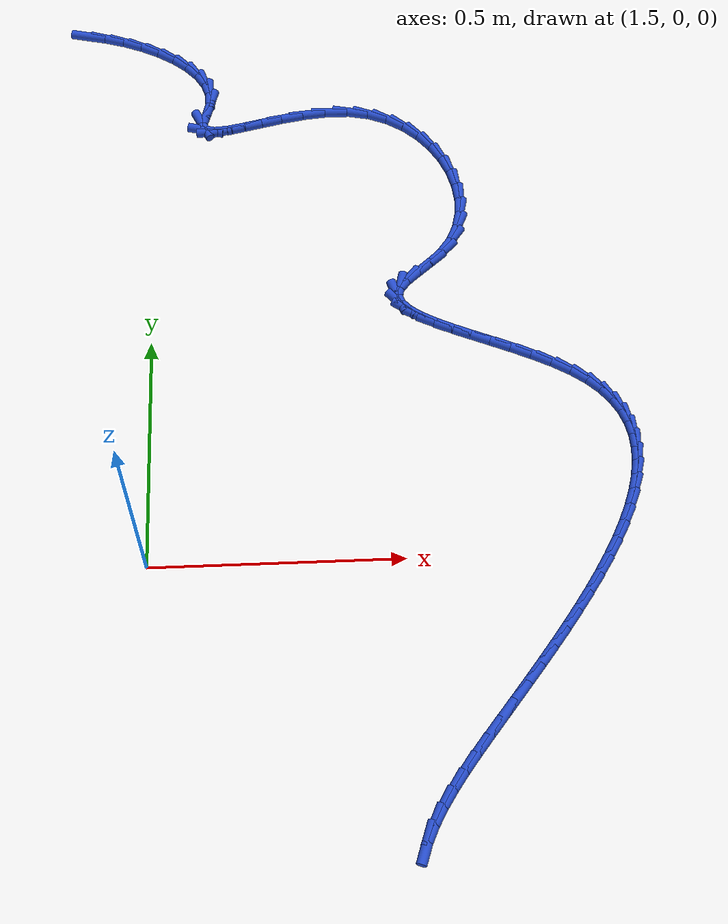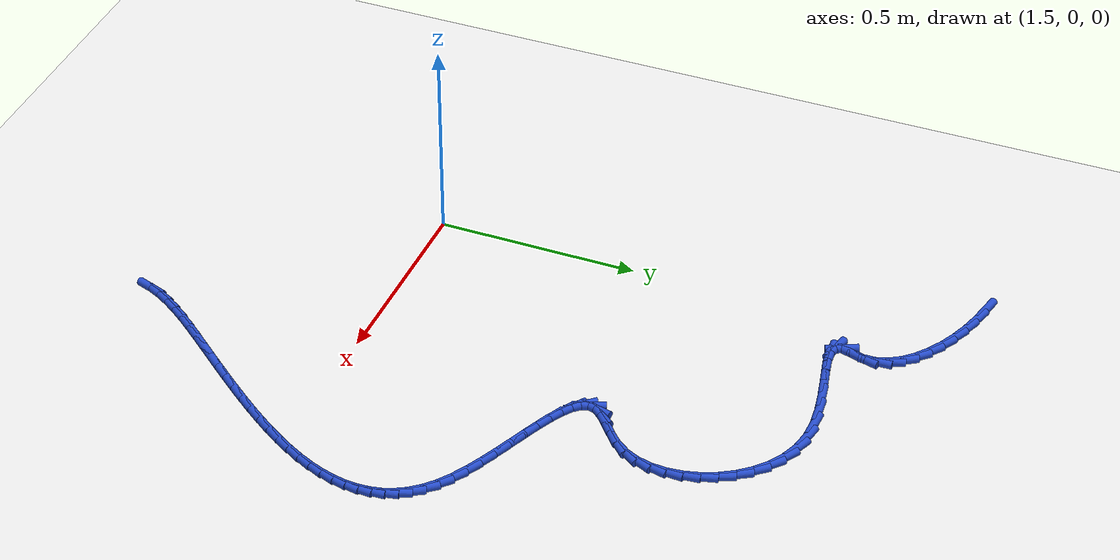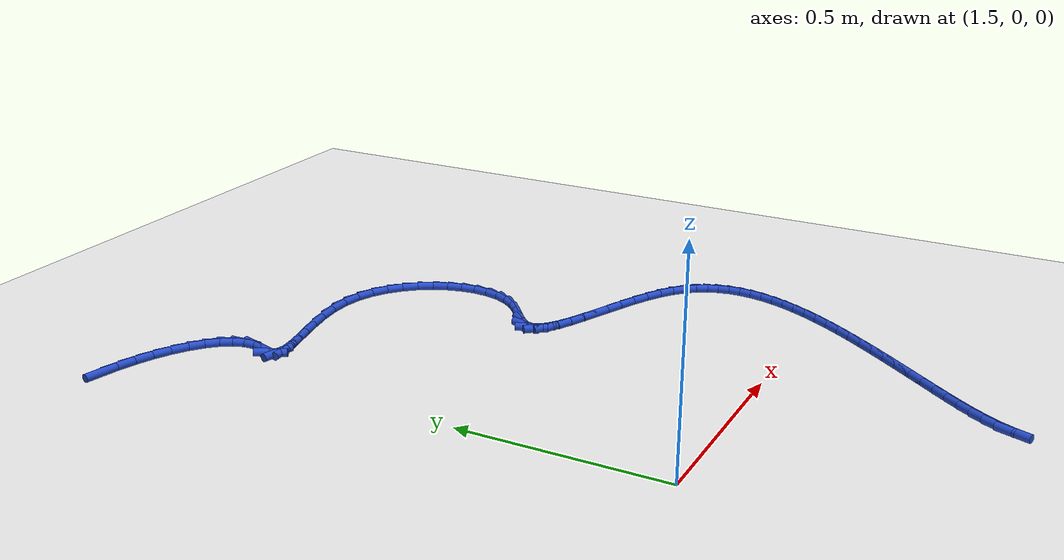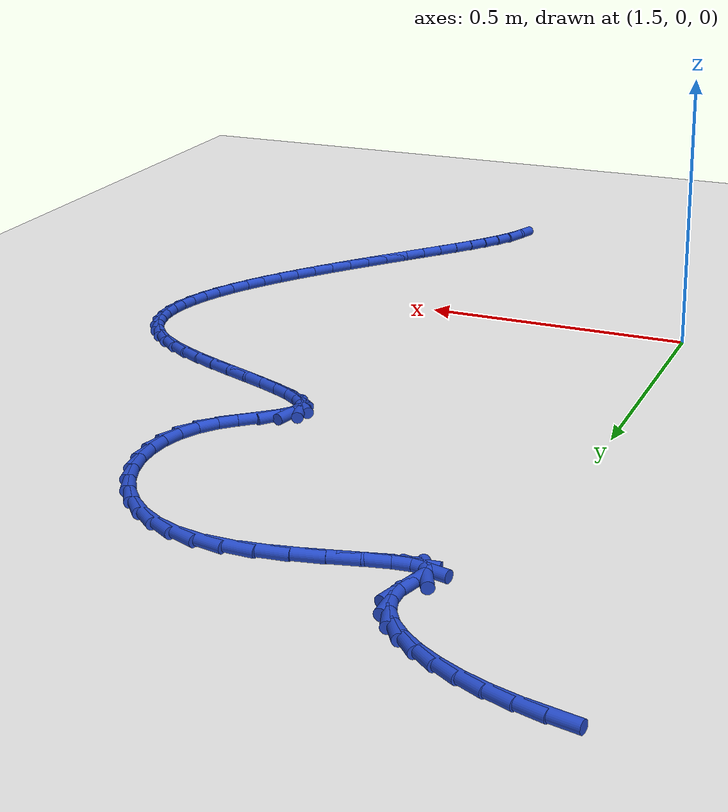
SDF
<sdf version="1.6">
 <world name="default">
  <model name="ground_plane">
   <static>1</static>
   <link name="link">
    <collision name="collision">
     <geometry><plane><normal>0 0 1</normal><size>100 100</size></plane></geometry>
     <surface><friction><ode><mu>100</mu><mu2>50</mu2></ode></friction></surface>
    </collision>
    <visual name="visual">
     <cast_shadows>0</cast_shadows>
     <geometry><plane><normal>0 0 1</normal><size>100 100</size></plane></geometry>
     <material>
      <script><uri>file://media/materials/scripts/gazebo.material</uri><name>Gazebo/WhiteGlow</name></script>
     </material>
    </visual>
   </link>
  </model>
  <model name="line">
   <link name="link_61">
    <pose>1.340395760797428 1.3300878134728509 0.01 0 1.57 -0.2167639707922253</pose>
    <collision name="collision">
     <geometry><cylinder><radius>0.01</radius><length>0.08</length></cylinder></geometry>
    </collision>
    <visual name="visual">
     <material>
      <script><name>Gazebo/Blue</name><uri>file://media/materials/scripts/gazebo.material</uri></script>
     </material>
     <geometry><cylinder><radius>0.01</radius><length>0.08</length></cylinder></geometry>
    </visual>
   </link>
   <link name="link_62">
    <pose>1.3844405349383193 1.3203880963495367 0.01 0 1.57 -0.2935425489364609</pose>
    <collision name="collision">
     <geometry><cylinder><radius>0.01</radius><length>0.08</length></cylinder></geometry>
    </collision>
    <visual name="visual">
     <material>
      <script><name>Gazebo/Blue</name><uri>file://media/materials/scripts/gazebo.material</uri></script>
     </material>
     <geometry><cylinder><radius>0.01</radius><length>0.08</length></cylinder></geometry>
    </visual>
   </link>
   <link name="link_63">
    <pose>1.4274301290411797 1.3073934211287537 0.01 0 1.57 -0.3726568076662822</pose>
    <collision name="collision">
     <geometry><cylinder><radius>0.01</radius><length>0.08</length></cylinder></geometry>
    </collision>
    <visual name="visual">
     <material>
      <script><name>Gazebo/Blue</name><uri>file://media/materials/scripts/gazebo.material</uri></script>
     </material>
     <geometry><cylinder><radius>0.01</radius><length>0.08</length></cylinder></geometry>
    </visual>
   </link>
   <link name="link_64">
    <pose>1.4684306083479337 1.2913653983905737 0.01 0 1.57 -0.4586146114452032</pose>
    <collision name="collision">
     <geometry><cylinder><radius>0.01</radius><length>0.08</length></cylinder></geometry>
    </collision>
    <visual name="visual">
     <material>
      <script><name>Gazebo/Blue</name><uri>file://media/materials/scripts/gazebo.material</uri></script>
     </material>
     <geometry><cylinder><radius>0.01</radius><length>0.08</length></cylinder></geometry>
    </visual>
   </link>
   <link name="link_65">
    <pose>1.5065080381005085 1.2725656387150677 0.01 0 1.57 -0.5569608270661742</pose>
    <collision name="collision">
     <geometry><cylinder><radius>0.01</radius><length>0.08</length></cylinder></geometry>
    </collision>
    <visual name="visual">
     <material>
      <script><name>Gazebo/Blue</name><uri>file://media/materials/scripts/gazebo.material</uri></script>
     </material>
     <geometry><cylinder><radius>0.01</radius><length>0.08</length></cylinder></geometry>
    </visual>
   </link>
   <link name="link_66">
    <pose>1.5407284835408315 1.251255752682307 0.01 0 1.57 -0.6750471116993496</pose>
    <collision name="collision">
     <geometry><cylinder><radius>0.01</radius><length>0.08</length></cylinder></geometry>
    </collision>
    <visual name="visual">
     <material>
      <script><name>Gazebo/Blue</name><uri>file://media/materials/scripts/gazebo.material</uri></script>
     </material>
     <geometry><cylinder><radius>0.01</radius><length>0.08</length></cylinder></geometry>
    </visual>
   </link>
   <link name="link_67">
    <pose>1.5701580099108257 1.2276973508723619 0.01 0 1.57 -0.8227540815636786</pose>
    <collision name="collision">
     <geometry><cylinder><radius>0.01</radius><length>0.08</length></cylinder></geometry>
    </collision>
    <visual name="visual">
     <material>
      <script><name>Gazebo/Blue</name><uri>file://media/materials/scripts/gazebo.material</uri></script>
     </material>
     <geometry><cylinder><radius>0.01</radius><length>0.08</length></cylinder></geometry>
    </visual>
   </link>
   <link name="link_68">
    <pose>1.59386268245242 1.2021520438653048 0.01 0 1.57 -1.0121506575034567</pose>
    <collision name="collision">
     <geometry><cylinder><radius>0.01</radius><length>0.08</length></cylinder></geometry>
    </collision>
    <visual name="visual">
     <material>
      <script><name>Gazebo/Blue</name><uri>file://media/materials/scripts/gazebo.material</uri></script>
     </material>
     <geometry><cylinder><radius>0.01</radius><length>0.08</length></cylinder></geometry>
    </visual>
   </link>
   <link name="link_69">
    <pose>1.6109085664075393 1.1748814422412064 0.01 0 1.57 -1.252963998566608</pose>
    <collision name="collision">
     <geometry><cylinder><radius>0.01</radius><length>0.08</length></cylinder></geometry>
    </collision>
    <visual name="visual">
     <material>
      <script><name>Gazebo/Blue</name><uri>file://media/materials/scripts/gazebo.material</uri></script>
     </material>
     <geometry><cylinder><radius>0.01</radius><length>0.08</length></cylinder></geometry>
    </visual>
   </link>
   <link name="link_70">
    <pose>1.62036172701811 1.1461471565801375 0.01 0 1.57 -1.5398571314530696</pose>
    <collision name="collision">
     <geometry><cylinder><radius>0.01</radius><length>0.08</length></cylinder></geometry>
    </collision>
    <visual name="visual">
     <material>
      <script><name>Gazebo/Blue</name><uri>file://media/materials/scripts/gazebo.material</uri></script>
     </material>
     <geometry><cylinder><radius>0.01</radius><length>0.08</length></cylinder></geometry>
    </visual>
   </link>
   <link name="link_71">
    <pose>1.6212882295260593 1.1162107974621702 0.01 0 1.57 1.3012800765456212</pose>
    <collision name="collision">
     <geometry><cylinder><radius>0.01</radius><length>0.08</length></cylinder></geometry>
    </collision>
    <visual name="visual">
     <material>
      <script><name>Gazebo/Blue</name><uri>file://media/materials/scripts/gazebo.material</uri></script>
     </material>
     <geometry><cylinder><radius>0.01</radius><length>0.08</length></cylinder></geometry>
    </visual>
   </link>
   <link name="link_72">
    <pose>1.6127597035332948 1.0853368973259405 0.01 0 1.57 1.2847132469629963</pose>
    <collision name="collision">
     <geometry><cylinder><radius>0.01</radius><length>0.08</length></cylinder></geometry>
    </collision>
    <visual name="visual">
     <material>
      <script><name>Gazebo/Blue</name><uri>file://media/materials/scripts/gazebo.material</uri></script>
     </material>
     <geometry><cylinder><radius>0.01</radius><length>0.08</length></cylinder></geometry>
    </visual>
   </link>
   <link name="link_73">
    <pose>1.6051887236959914 1.0595985740715066 0.01 0 1.57 -1.1298136319366794</pose>
    <collision name="collision">
     <geometry><cylinder><radius>0.01</radius><length>0.08</length></cylinder></geometry>
    </collision>
    <visual name="visual">
     <material>
      <script><name>Gazebo/Blue</name><uri>file://media/materials/scripts/gazebo.material</uri></script>
     </material>
     <geometry><cylinder><radius>0.01</radius><length>0.08</length></cylinder></geometry>
    </visual>
   </link>
   <link name="link_74">
    <pose>1.6118845076073545 1.0454120374844895 0.01 0 1.57 -0.24508033800442752</pose>
    <collision name="collision">
     <geometry><cylinder><radius>0.01</radius><length>0.08</length></cylinder></geometry>
    </collision>
    <visual name="visual">
     <material>
      <script><name>Gazebo/Blue</name><uri>file://media/materials/scripts/gazebo.material</uri></script>
     </material>
     <geometry><cylinder><radius>0.01</radius><length>0.08</length></cylinder></geometry>
    </visual>
   </link>
   <link name="link_75">
    <pose>1.6309530758306756 1.0406428354073034 0.01 0 1.57 0.08215740917575087</pose>
    <collision name="collision">
     <geometry><cylinder><radius>0.01</radius><length>0.08</length></cylinder></geometry>
    </collision>
    <visual name="visual">
     <material>
      <script><name>Gazebo/Blue</name><uri>file://media/materials/scripts/gazebo.material</uri></script>
     </material>
     <geometry><cylinder><radius>0.01</radius><length>0.08</length></cylinder></geometry>
    </visual>
   </link>
   <link name="link_76">
    <pose>1.66032647646584 1.0430615222688966 0.01 0 1.57 0.19368767412136453</pose>
    <collision name="collision">
     <geometry><cylinder><radius>0.01</radius><length>0.08</length></cylinder></geometry>
    </collision>
    <visual name="visual">
     <material>
      <script><name>Gazebo/Blue</name><uri>file://media/materials/scripts/gazebo.material</uri></script>
     </material>
     <geometry><cylinder><radius>0.01</radius><length>0.08</length></cylinder></geometry>
    </visual>
   </link>
   <link name="link_77">
    <pose>1.6979367576127318 1.0504386524982177 0.01 0 1.57 0.2268689709913293</pose>
    <collision name="collision">
     <geometry><cylinder><radius>0.01</radius><length>0.08</length></cylinder></geometry>
    </collision>
    <visual name="visual">
     <material>
      <script><name>Gazebo/Blue</name><uri>file://media/materials/scripts/gazebo.material</uri></script>
     </material>
     <geometry><cylinder><radius>0.01</radius><length>0.08</length></cylinder></geometry>
    </visual>
   </link>
   <link name="link_78">
    <pose>1.7417159673712368 1.0605447805242152 0.01 0 1.57 0.21798496438910486</pose>
    <collision name="collision">
     <geometry><cylinder><radius>0.01</radius><length>0.08</length></cylinder></geometry>
    </collision>
    <visual name="visual">
     <material>
      <script><name>Gazebo/Blue</name><uri>file://media/materials/scripts/gazebo.material</uri></script>
     </material>
     <geometry><cylinder><radius>0.01</radius><length>0.08</length></cylinder></geometry>
    </visual>
   </link>
   <link name="link_79">
    <pose>1.7895961538412375 1.0711504607758373 0.01 0 1.57 0.17598482008865685</pose>
    <collision name="collision">
     <geometry><cylinder><radius>0.01</radius><length>0.08</length></cylinder></geometry>
    </collision>
    <visual name="visual">
     <material>
      <script><name>Gazebo/Blue</name><uri>file://media/materials/scripts/gazebo.material</uri></script>
     </material>
     <geometry><cylinder><radius>0.01</radius><length>0.08</length></cylinder></geometry>
    </visual>
   </link>
   <link name="link_80">
    <pose>1.8395093651226193 1.0800262476820326 0.01 0 1.57 0.09825152955305204</pose>
    <collision name="collision">
     <geometry><cylinder><radius>0.01</radius><length>0.08</length></cylinder></geometry>
    </collision>
    <visual name="visual">
     <material>
      <script><name>Gazebo/Blue</name><uri>file://media/materials/scripts/gazebo.material</uri></script>
     </material>
     <geometry><cylinder><radius>0.01</radius><length>0.08</length></cylinder></geometry>
    </visual>
   </link>
   <link name="link_81">
    <pose>1.8893876493152668 1.0849426956717494 0.01 0 1.57 -0.026580276292437813</pose>
    <collision name="collision">
     <geometry><cylinder><radius>0.01</radius><length>0.08</length></cylinder></geometry>
    </collision>
    <visual name="visual">
     <material>
      <script><name>Gazebo/Blue</name><uri>file://media/materials/scripts/gazebo.material</uri></script>
     </material>
     <geometry><cylinder><radius>0.01</radius><length>0.08</length></cylinder></geometry>
    </visual>
   </link>
   <link name="link_82">
    <pose>1.9371642668402376 1.0836724808232354 0.01 0 1.57 -0.1985622148275031</pose>
    <collision name="collision">
     <geometry><cylinder><radius>0.01</radius><length>0.08</length></cylinder></geometry>
    </collision>
    <visual name="visual">
     <material>
      <script><name>Gazebo/Blue</name><uri>file://media/materials/scripts/gazebo.material</uri></script>
     </material>
     <geometry><cylinder><radius>0.01</radius><length>0.08</length></cylinder></geometry>
    </visual>
   </link>
   <link name="link_83">
    <pose>1.9812386508959894 1.0748041151236758 0.01 0 1.57 -0.3774107136295934</pose>
    <collision name="collision">
     <geometry><cylinder><radius>0.01</radius><length>0.08</length></cylinder></geometry>
    </collision>
    <visual name="visual">
     <material>
      <script><name>Gazebo/Blue</name><uri>file://media/materials/scripts/gazebo.material</uri></script>
     </material>
     <geometry><cylinder><radius>0.01</radius><length>0.08</length></cylinder></geometry>
    </visual>
   </link>
   <link name="link_84">
    <pose>2.0211788551876664 1.0589712805476412 0.01 0 1.57 -0.5510174598585761</pose>
    <collision name="collision">
     <geometry><cylinder><radius>0.01</radius><length>0.08</length></cylinder></geometry>
    </collision>
    <visual name="visual">
     <material>
      <script><name>Gazebo/Blue</name><uri>file://media/materials/scripts/gazebo.material</uri></script>
     </material>
     <geometry><cylinder><radius>0.01</radius><length>0.08</length></cylinder></geometry>
    </visual>
   </link>
   <link name="link_85">
    <pose>2.05673310842849 1.0371229783002724 0.01 0 1.57 -0.7163111229875072</pose>
    <collision name="collision">
     <geometry><cylinder><radius>0.01</radius><length>0.08</length></cylinder></geometry>
    </collision>
    <visual name="visual">
     <material>
      <script><name>Gazebo/Blue</name><uri>file://media/materials/scripts/gazebo.material</uri></script>
     </material>
     <geometry><cylinder><radius>0.01</radius><length>0.08</length></cylinder></geometry>
    </visual>
   </link>
   <link name="link_86">
    <pose>2.08764963933168 1.0102082095867109 0.01 0 1.57 -0.8728934600782305</pose>
    <collision name="collision">
     <geometry><cylinder><radius>0.01</radius><length>0.08</length></cylinder></geometry>
    </collision>
    <visual name="visual">
     <material>
      <script><name>Gazebo/Blue</name><uri>file://media/materials/scripts/gazebo.material</uri></script>
     </material>
     <geometry><cylinder><radius>0.01</radius><length>0.08</length></cylinder></geometry>
    </visual>
   </link>
   <link name="link_87">
    <pose>2.113676676610458 0.9791759756120975 0.01 0 1.57 -1.0225589534678956</pose>
    <collision name="collision">
     <geometry><cylinder><radius>0.01</radius><length>0.08</length></cylinder></geometry>
    </collision>
    <visual name="visual">
     <material>
      <script><name>Gazebo/Blue</name><uri>file://media/materials/scripts/gazebo.material</uri></script>
     </material>
     <geometry><cylinder><radius>0.01</radius><length>0.08</length></cylinder></geometry>
    </visual>
   </link>
   <link name="link_88">
    <pose>2.134562448978045 0.9449752775815725 0.01 0 1.57 -1.1685962308024194</pose>
    <collision name="collision">
     <geometry><cylinder><radius>0.01</radius><length>0.08</length></cylinder></geometry>
    </collision>
    <visual name="visual">
     <material>
      <script><name>Gazebo/Blue</name><uri>file://media/materials/scripts/gazebo.material</uri></script>
     </material>
     <geometry><cylinder><radius>0.01</radius><length>0.08</length></cylinder></geometry>
    </visual>
   </link>
   <link name="link_89">
    <pose>2.1500551851476613 0.9085551167002771 0.01 0 1.57 -1.3152266408617188</pose>
    <collision name="collision">
     <geometry><cylinder><radius>0.01</radius><length>0.08</length></cylinder></geometry>
    </collision>
    <visual name="visual">
     <material>
      <script><name>Gazebo/Blue</name><uri>file://media/materials/scripts/gazebo.material</uri></script>
     </material>
     <geometry><cylinder><radius>0.01</radius><length>0.08</length></cylinder></geometry>
    </visual>
   </link>
   <link name="link_90">
    <pose>2.159903113832528 0.8708644941733527 0.01 0 1.57 -1.467218491088479</pose>
    <collision name="collision">
     <geometry><cylinder><radius>0.01</radius><length>0.08</length></cylinder></geometry>
    </collision>
    <visual name="visual">
     <material>
      <script><name>Gazebo/Blue</name><uri>file://media/materials/scripts/gazebo.material</uri></script>
     </material>
     <geometry><cylinder><radius>0.01</radius><length>0.08</length></cylinder></geometry>
    </visual>
   </link>
   <link name="link_91">
    <pose>2.1638544637458663 0.8328524112059398 0.01 0 1.57 1.512096232213677</pose>
    <collision name="collision">
     <geometry><cylinder><radius>0.01</radius><length>0.08</length></cylinder></geometry>
    </collision>
    <visual name="visual">
     <material>
      <script><name>Gazebo/Blue</name><uri>file://media/materials/scripts/gazebo.material</uri></script>
     </material>
     <geometry><cylinder><radius>0.01</radius><length>0.08</length></cylinder></geometry>
    </visual>
   </link>
   <link name="link_92">
    <pose>2.1616574636008976 0.7954678690031797 0.01 0 1.57 1.335166811522999</pose>
    <collision name="collision">
     <geometry><cylinder><radius>0.01</radius><length>0.08</length></cylinder></geometry>
    </collision>
    <visual name="visual">
     <material>
      <script><name>Gazebo/Blue</name><uri>file://media/materials/scripts/gazebo.material</uri></script>
     </material>
     <geometry><cylinder><radius>0.01</radius><length>0.08</length></cylinder></geometry>
    </visual>
   </link>
   <link name="link_93">
    <pose>2.1530603421108414 0.7596598687702123 0.01 0 1.57 1.141169263694773</pose>
    <collision name="collision">
     <geometry><cylinder><radius>0.01</radius><length>0.08</length></cylinder></geometry>
    </collision>
    <visual name="visual">
     <material>
      <script><name>Gazebo/Blue</name><uri>file://media/materials/scripts/gazebo.material</uri></script>
     </material>
     <geometry><cylinder><radius>0.01</radius><length>0.08</length></cylinder></geometry>
    </visual>
   </link>
   <link name="link_94">
    <pose>2.1378113279889193 0.7263774117121794 0.01 0 1.57 0.9333698924398326</pose>
    <collision name="collision">
     <geometry><cylinder><radius>0.01</radius><length>0.08</length></cylinder></geometry>
    </collision>
    <visual name="visual">
     <material>
      <script><name>Gazebo/Blue</name><uri>file://media/materials/scripts/gazebo.material</uri></script>
     </material>
     <geometry><cylinder><radius>0.01</radius><length>0.08</length></cylinder></geometry>
    </visual>
   </link>
   <link name="link_95">
    <pose>2.1157208938651624 0.6965476949720115 0.01 0 1.57 0.7681483694709871</pose>
    <collision name="collision">
     <geometry><cylinder><radius>0.01</radius><length>0.08</length></cylinder></geometry>
    </collision>
    <visual name="visual">
     <material>
      <script><name>Gazebo/Blue</name><uri>file://media/materials/scripts/gazebo.material</uri></script>
     </material>
     <geometry><cylinder><radius>0.01</radius><length>0.08</length></cylinder></geometry>
    </visual>
   </link>
   <link name="link_96">
    <pose>2.088638332385625 0.6703837164464365 0.01 0 1.57 0.6946073784588823</pose>
    <collision name="collision">
     <geometry><cylinder><radius>0.01</radius><length>0.08</length></cylinder></geometry>
    </collision>
    <visual name="visual">
     <material>
      <script><name>Gazebo/Blue</name><uri>file://media/materials/scripts/gazebo.material</uri></script>
     </material>
     <geometry><cylinder><radius>0.01</radius><length>0.08</length></cylinder></geometry>
    </visual>
   </link>
   <link name="link_97">
    <pose>2.0608600001776236 0.6472412668059051 0.01 0 1.57 0.7137872941404795</pose>
    <collision name="collision">
     <geometry><cylinder><radius>0.01</radius><length>0.08</length></cylinder></geometry>
    </collision>
    <visual name="visual">
     <material>
      <script><name>Gazebo/Blue</name><uri>file://media/materials/scripts/gazebo.material</uri></script>
     </material>
     <geometry><cylinder><radius>0.01</radius><length>0.08</length></cylinder></geometry>
    </visual>
   </link>
   <link name="link_98">
    <pose>2.0368270001657547 0.6264254320507154 0.01 0 1.57 0.8803544443214262</pose>
    <collision name="collision">
     <geometry><cylinder><radius>0.01</radius><length>0.08</length></cylinder></geometry>
    </collision>
    <visual name="visual">
     <material>
      <script><name>Gazebo/Blue</name><uri>file://media/materials/scripts/gazebo.material</uri></script>
     </material>
     <geometry><cylinder><radius>0.01</radius><length>0.08</length></cylinder></geometry>
    </visual>
   </link>
   <link name="link_99">
    <pose>2.0209794537241583 0.607241381312002 0.01 0 1.57 1.326827298457314</pose>
    <collision name="collision">
     <geometry><cylinder><radius>0.01</radius><length>0.08</length></cylinder></geometry>
    </collision>
    <visual name="visual">
     <material>
      <script><name>Gazebo/Blue</name><uri>file://media/materials/scripts/gazebo.material</uri></script>
     </material>
     <geometry><cylinder><radius>0.01</radius><length>0.08</length></cylinder></geometry>
    </visual>
   </link>
   <link name="link_100">
    <pose>2.0164645078830428 0.5891037901023928 0.01 0 1.57 -1.2314047300402549</pose>
    <collision name="collision">
     <geometry><cylinder><radius>0.01</radius><length>0.08</length></cylinder></geometry>
    </collision>
    <visual name="visual">
     <material>
      <script><name>Gazebo/Blue</name><uri>file://media/materials/scripts/gazebo.material</uri></script>
     </material>
     <geometry><cylinder><radius>0.01</radius><length>0.08</length></cylinder></geometry>
    </visual>
   </link>
   <link name="link_101">
    <pose>2.0225904378716106 0.5717524610044508 0.01 0 1.57 -0.8289199451595921</pose>
    <collision name="collision">
     <geometry><cylinder><radius>0.01</radius><length>0.08</length></cylinder></geometry>
    </collision>
    <visual name="visual">
     <material>
      <script><name>Gazebo/Blue</name><uri>file://media/materials/scripts/gazebo.material</uri></script>
     </material>
     <geometry><cylinder><radius>0.01</radius><length>0.08</length></cylinder></geometry>
    </visual>
   </link>
   <link name="link_102">
    <pose>2.037956353533371 0.5549872582219401 0.01 0 1.57 -0.6146400672398096</pose>
    <collision name="collision">
     <geometry><cylinder><radius>0.01</radius><length>0.08</length></cylinder></geometry>
    </collision>
    <visual name="visual">
     <material>
      <script><name>Gazebo/Blue</name><uri>file://media/materials/scripts/gazebo.material</uri></script>
     </material>
     <geometry><cylinder><radius>0.01</radius><length>0.08</length></cylinder></geometry>
    </visual>
   </link>
   <link name="link_103">
    <pose>2.0611613647118285 0.5386080459586234 0.01 0 1.57 -0.4999790733120169</pose>
    <collision name="collision">
     <geometry><cylinder><radius>0.01</radius><length>0.08</length></cylinder></geometry>
    </collision>
    <visual name="visual">
     <material>
      <script><name>Gazebo/Blue</name><uri>file://media/materials/scripts/gazebo.material</uri></script>
     </material>
     <geometry><cylinder><radius>0.01</radius><length>0.08</length></cylinder></geometry>
    </visual>
   </link>
   <link name="link_104">
    <pose>2.0908045812504943 0.5224146884182649 0.01 0 1.57 -0.4371808576501599</pose>
    <collision name="collision">
     <geometry><cylinder><radius>0.01</radius><length>0.08</length></cylinder></geometry>
    </collision>
    <visual name="visual">
     <material>
      <script><name>Gazebo/Blue</name><uri>file://media/materials/scripts/gazebo.material</uri></script>
     </material>
     <geometry><cylinder><radius>0.01</radius><length>0.08</length></cylinder></geometry>
    </visual>
   </link>
   <link name="link_105">
    <pose>2.1254851129928745 0.5062070498046279 0.01 0 1.57 -0.40490286717003754</pose>
    <collision name="collision">
     <geometry><cylinder><radius>0.01</radius><length>0.08</length></cylinder></geometry>
    </collision>
    <visual name="visual">
     <material>
      <script><name>Gazebo/Blue</name><uri>file://media/materials/scripts/gazebo.material</uri></script>
     </material>
     <geometry><cylinder><radius>0.01</radius><length>0.08</length></cylinder></geometry>
    </visual>
   </link>
   <link name="link_106">
    <pose>2.163802069782477 0.48978499432147643 0.01 0 1.57 -0.3935242244069035</pose>
    <collision name="collision">
     <geometry><cylinder><radius>0.01</radius><length>0.08</length></cylinder></geometry>
    </collision>
    <visual name="visual">
     <material>
      <script><name>Gazebo/Blue</name><uri>file://media/materials/scripts/gazebo.material</uri></script>
     </material>
     <geometry><cylinder><radius>0.01</radius><length>0.08</length></cylinder></geometry>
    </visual>
   </link>
   <link name="link_107">
    <pose>2.204354561462811 0.47294838617257373 0.01 0 1.57 -0.3990381711532962</pose>
    <collision name="collision">
     <geometry><cylinder><radius>0.01</radius><length>0.08</length></cylinder></geometry>
    </collision>
    <visual name="visual">
     <material>
      <script><name>Gazebo/Blue</name><uri>file://media/materials/scripts/gazebo.material</uri></script>
     </material>
     <geometry><cylinder><radius>0.01</radius><length>0.08</length></cylinder></geometry>
    </visual>
   </link>
   <link name="link_108">
    <pose>2.2457416978773828 0.4554970895616831 0.01 0 1.57 -0.42074791949436086</pose>
    <collision name="collision">
     <geometry><cylinder><radius>0.01</radius><length>0.08</length></cylinder></geometry>
    </collision>
    <visual name="visual">
     <material>
      <script><name>Gazebo/Blue</name><uri>file://media/materials/scripts/gazebo.material</uri></script>
     </material>
     <geometry><cylinder><radius>0.01</radius><length>0.08</length></cylinder></geometry>
    </visual>
   </link>
   <link name="link_109">
    <pose>2.2865625888697014 0.43723096869256894 0.01 0 1.57 -0.4606411452239452</pose>
    <collision name="collision">
     <geometry><cylinder><radius>0.01</radius><length>0.08</length></cylinder></geometry>
    </collision>
    <visual name="visual">
     <material>
      <script><name>Gazebo/Blue</name><uri>file://media/materials/scripts/gazebo.material</uri></script>
     </material>
     <geometry><cylinder><radius>0.01</radius><length>0.08</length></cylinder></geometry>
    </visual>
   </link>
   <link name="link_110">
    <pose>2.325416344283273 0.41794988776899417 0.01 0 1.57 -0.5237780092178954</pose>
    <collision name="collision">
     <geometry><cylinder><radius>0.01</radius><length>0.08</length></cylinder></geometry>
    </collision>
    <visual name="visual">
     <material>
      <script><name>Gazebo/Blue</name><uri>file://media/materials/scripts/gazebo.material</uri></script>
     </material>
     <geometry><cylinder><radius>0.01</radius><length>0.08</length></cylinder></geometry>
    </visual>
   </link>
   <link name="link_111">
    <pose>2.360902073961607 0.3974537109947227 0.01 0 1.57 -0.6193681581966047</pose>
    <collision name="collision">
     <geometry><cylinder><radius>0.01</radius><length>0.08</length></cylinder></geometry>
    </collision>
    <visual name="visual">
     <material>
      <script><name>Gazebo/Blue</name><uri>file://media/materials/scripts/gazebo.material</uri></script>
     </material>
     <geometry><cylinder><radius>0.01</radius><length>0.08</length></cylinder></geometry>
    </visual>
   </link>
   <link name="link_112">
    <pose>2.391632038700746 0.37554461157634933 0.01 0 1.57 -0.7477177642747441</pose>
    <collision name="collision">
     <geometry><cylinder><radius>0.01</radius><length>0.08</length></cylinder></geometry>
    </collision>
    <visual name="visual">
     <material>
      <script><name>Gazebo/Blue</name><uri>file://media/materials/scripts/gazebo.material</uri></script>
     </material>
     <geometry><cylinder><radius>0.01</radius><length>0.08</length></cylinder></geometry>
    </visual>
   </link>
   <link name="link_113">
    <pose>2.4168711101923224 0.3521393460863399 0.01 0 1.57 -0.8936674471601281</pose>
    <collision name="collision">
     <geometry><cylinder><radius>0.01</radius><length>0.08</length></cylinder></geometry>
    </collision>
    <visual name="visual">
     <material>
      <script><name>Gazebo/Blue</name><uri>file://media/materials/scripts/gazebo.material</uri></script>
     </material>
     <geometry><cylinder><radius>0.01</radius><length>0.08</length></cylinder></geometry>
    </visual>
   </link>
   <link name="link_114">
    <pose>2.43682419655216 0.3273197197321913 0.01 0 1.57 -1.0514114276510331</pose>
    <collision name="collision">
     <geometry><cylinder><radius>0.01</radius><length>0.08</length></cylinder></geometry>
    </collision>
    <visual name="visual">
     <material>
      <script><name>Gazebo/Blue</name><uri>file://media/materials/scripts/gazebo.material</uri></script>
     </material>
     <geometry><cylinder><radius>0.01</radius><length>0.08</length></cylinder></geometry>
    </visual>
   </link>
   <link name="link_115">
    <pose>2.4517692527127517 0.30118036305143503 0.01 0 1.57 -1.2135223751096114</pose>
    <collision name="collision">
     <geometry><cylinder><radius>0.01</radius><length>0.08</length></cylinder></geometry>
    </collision>
    <visual name="visual">
     <material>
      <script><name>Gazebo/Blue</name><uri>file://media/materials/scripts/gazebo.material</uri></script>
     </material>
     <geometry><cylinder><radius>0.01</radius><length>0.08</length></cylinder></geometry>
    </visual>
   </link>
   <link name="link_116">
    <pose>2.461984233606592 0.27381590658160376 0.01 0 1.57 -1.3712462742848546</pose>
    <collision name="collision">
     <geometry><cylinder><radius>0.01</radius><length>0.08</length></cylinder></geometry>
    </collision>
    <visual name="visual">
     <material>
      <script><name>Gazebo/Blue</name><uri>file://media/materials/scripts/gazebo.material</uri></script>
     </material>
     <geometry><cylinder><radius>0.01</radius><length>0.08</length></cylinder></geometry>
    </visual>
   </link>
   <link name="link_117">
    <pose>2.467747094166174 0.24532098086022897 0.01 0 1.57 -1.5170501686557594</pose>
    <collision name="collision">
     <geometry><cylinder><radius>0.01</radius><length>0.08</length></cylinder></geometry>
    </collision>
    <visual name="visual">
     <material>
      <script><name>Gazebo/Blue</name><uri>file://media/materials/scripts/gazebo.material</uri></script>
     </material>
     <geometry><cylinder><radius>0.01</radius><length>0.08</length></cylinder></geometry>
    </visual>
   </link>
   <link name="link_118">
    <pose>2.469335789323991 0.21579021642484256 0.01 0 1.57 1.4952147517043648</pose>
    <collision name="collision">
     <geometry><cylinder><radius>0.01</radius><length>0.08</length></cylinder></geometry>
    </collision>
    <visual name="visual">
     <material>
      <script><name>Gazebo/Blue</name><uri>file://media/materials/scripts/gazebo.material</uri></script>
     </material>
     <geometry><cylinder><radius>0.01</radius><length>0.08</length></cylinder></geometry>
    </visual>
   </link>
   <link name="link_119">
    <pose>2.467028274012538 0.1853182438129761 0.01 0 1.57 1.3837973365690395</pose>
    <collision name="collision">
     <geometry><cylinder><radius>0.01</radius><length>0.08</length></cylinder></geometry>
    </collision>
    <visual name="visual">
     <material>
      <script><name>Gazebo/Blue</name><uri>file://media/materials/scripts/gazebo.material</uri></script>
     </material>
     <geometry><cylinder><radius>0.01</radius><length>0.08</length></cylinder></geometry>
    </visual>
   </link>
   <link name="link_120">
    <pose>2.4611025031643075 0.15399969356216228 0.01 0 1.57 1.2895278312926857</pose>
    <collision name="collision">
     <geometry><cylinder><radius>0.01</radius><length>0.08</length></cylinder></geometry>
    </collision>
    <visual name="visual">
     <material>
      <script><name>Gazebo/Blue</name><uri>file://media/materials/scripts/gazebo.material</uri></script>
     </material>
     <geometry><cylinder><radius>0.01</radius><length>0.08</length></cylinder></geometry>
    </visual>
   </link>
   <link name="link_121">
    <pose>2.4518364317117927 0.12192919620993246 0.01 0 1.57 1.210540103018157</pose>
    <collision name="collision">
     <geometry><cylinder><radius>0.01</radius><length>0.08</length></cylinder></geometry>
    </collision>
    <visual name="visual">
     <material>
      <script><name>Gazebo/Blue</name><uri>file://media/materials/scripts/gazebo.material</uri></script>
     </material>
     <geometry><cylinder><radius>0.01</radius><length>0.08</length></cylinder></geometry>
    </visual>
   </link>
   <link name="link_122">
    <pose>2.4395080145874886 0.08920138229381865 0.01 0 1.57 1.1446478571593113</pose>
    <collision name="collision">
     <geometry><cylinder><radius>0.01</radius><length>0.08</length></cylinder></geometry>
    </collision>
    <visual name="visual">
     <material>
      <script><name>Gazebo/Blue</name><uri>file://media/materials/scripts/gazebo.material</uri></script>
     </material>
     <geometry><cylinder><radius>0.01</radius><length>0.08</length></cylinder></geometry>
    </visual>
   </link>
   <link name="link_123">
    <pose>2.4243952067238874 0.05591088235135258 0.01 0 1.57 1.0897673901545775</pose>
    <collision name="collision">
     <geometry><cylinder><radius>0.01</radius><length>0.08</length></cylinder></geometry>
    </collision>
    <visual name="visual">
     <material>
      <script><name>Gazebo/Blue</name><uri>file://media/materials/scripts/gazebo.material</uri></script>
     </material>
     <geometry><cylinder><radius>0.01</radius><length>0.08</length></cylinder></geometry>
    </visual>
   </link>
   <link name="link_124">
    <pose>2.4067759630534837 0.022152326920066336 0.01 0 1.57 1.044091328224183</pose>
    <collision name="collision">
     <geometry><cylinder><radius>0.01</radius><length>0.08</length></cylinder></geometry>
    </collision>
    <visual name="visual">
     <material>
      <script><name>Gazebo/Blue</name><uri>file://media/materials/scripts/gazebo.material</uri></script>
     </material>
     <geometry><cylinder><radius>0.01</radius><length>0.08</length></cylinder></geometry>
    </visual>
   </link>
   <link name="link_125">
    <pose>2.38692823850877 -0.01197965346250917 0.01 0 1.57 1.0061282159114677</pose>
    <collision name="collision">
     <geometry><cylinder><radius>0.01</radius><length>0.08</length></cylinder></geometry>
    </collision>
    <visual name="visual">
     <material>
      <script><name>Gazebo/Blue</name><uri>file://media/materials/scripts/gazebo.material</uri></script>
     </material>
     <geometry><cylinder><radius>0.01</radius><length>0.08</length></cylinder></geometry>
    </visual>
   </link>
   <link name="link_126">
    <pose>2.365129988022241 -0.04639042825884025 0.01 0 1.57 0.9746826036807036</pose>
    <collision name="collision">
     <geometry><cylinder><radius>0.01</radius><length>0.08</length></cylinder></geometry>
    </collision>
    <visual name="visual">
     <material>
      <script><name>Gazebo/Blue</name><uri>file://media/materials/scripts/gazebo.material</uri></script>
     </material>
     <geometry><cylinder><radius>0.01</radius><length>0.08</length></cylinder></geometry>
    </visual>
   </link>
   <link name="link_127">
    <pose>2.341659166526391 -0.08098536693139598 0.01 0 1.57 0.948815240985054</pose>
    <collision name="collision">
     <geometry><cylinder><radius>0.01</radius><length>0.08</length></cylinder></geometry>
    </collision>
    <visual name="visual">
     <material>
      <script><name>Gazebo/Blue</name><uri>file://media/materials/scripts/gazebo.material</uri></script>
     </material>
     <geometry><cylinder><radius>0.01</radius><length>0.08</length></cylinder></geometry>
    </visual>
   </link>
   <link name="link_128">
    <pose>2.3167937289537113 -0.11566983894264429 0.01 0 1.57 0.9278016688352111</pose>
    <collision name="collision">
     <geometry><cylinder><radius>0.01</radius><length>0.08</length></cylinder></geometry>
    </collision>
    <visual name="visual">
     <material>
      <script><name>Gazebo/Blue</name><uri>file://media/materials/scripts/gazebo.material</uri></script>
     </material>
     <geometry><cylinder><radius>0.01</radius><length>0.08</length></cylinder></geometry>
    </visual>
   </link>
   <link name="link_129">
    <pose>2.2908116302366976 -0.15034921375505345 0.01 0 1.57 0.9110965150613196</pose>
    <collision name="collision">
     <geometry><cylinder><radius>0.01</radius><length>0.08</length></cylinder></geometry>
    </collision>
    <visual name="visual">
     <material>
      <script><name>Gazebo/Blue</name><uri>file://media/materials/scripts/gazebo.material</uri></script>
     </material>
     <geometry><cylinder><radius>0.01</radius><length>0.08</length></cylinder></geometry>
    </visual>
   </link>
   <link name="link_130">
    <pose>2.263990825307843 -0.18492886083109156 0.01 0 1.57 0.8983057561913923</pose>
    <collision name="collision">
     <geometry><cylinder><radius>0.01</radius><length>0.08</length></cylinder></geometry>
    </collision>
    <visual name="visual">
     <material>
      <script><name>Gazebo/Blue</name><uri>file://media/materials/scripts/gazebo.material</uri></script>
     </material>
     <geometry><cylinder><radius>0.01</radius><length>0.08</length></cylinder></geometry>
    </visual>
   </link>
   <link name="link_131">
    <pose>2.23660926909964 -0.21931414963322665 0.01 0 1.57 0.8891672160740032</pose>
    <collision name="collision">
     <geometry><cylinder><radius>0.01</radius><length>0.08</length></cylinder></geometry>
    </collision>
    <visual name="visual">
     <material>
      <script><name>Gazebo/Blue</name><uri>file://media/materials/scripts/gazebo.material</uri></script>
     </material>
     <geometry><cylinder><radius>0.01</radius><length>0.08</length></cylinder></geometry>
    </visual>
   </link>
   <link name="link_132">
    <pose>2.2089449165445836 -0.25341044962392784 0.01 0 1.57 0.8835390455210905</pose>
    <collision name="collision">
     <geometry><cylinder><radius>0.01</radius><length>0.08</length></cylinder></geometry>
    </collision>
    <visual name="visual">
     <material>
      <script><name>Gazebo/Blue</name><uri>file://media/materials/scripts/gazebo.material</uri></script>
     </material>
     <geometry><cylinder><radius>0.01</radius><length>0.08</length></cylinder></geometry>
    </visual>
   </link>
   <link name="link_133">
    <pose>2.181275722575166 -0.2871231302656613 0.01 0 1.57 0.8813961108774361</pose>
    <collision name="collision">
     <geometry><cylinder><radius>0.01</radius><length>0.08</length></cylinder></geometry>
    </collision>
    <visual name="visual">
     <material>
      <script><name>Gazebo/Blue</name><uri>file://media/materials/scripts/gazebo.material</uri></script>
     </material>
     <geometry><cylinder><radius>0.01</radius><length>0.08</length></cylinder></geometry>
    </visual>
   </link>
   <link name="link_134">
    <pose>2.153879642123883 -0.3203575610208961 0.01 0 1.57 0.8828585949578609</pose>
    <collision name="collision">
     <geometry><cylinder><radius>0.01</radius><length>0.08</length></cylinder></geometry>
    </collision>
    <visual name="visual">
     <material>
      <script><name>Gazebo/Blue</name><uri>file://media/materials/scripts/gazebo.material</uri></script>
     </material>
     <geometry><cylinder><radius>0.01</radius><length>0.08</length></cylinder></geometry>
    </visual>
   </link>
   <link name="link_135">
    <pose>2.127035413411971 -0.35301974250358037 0.01 0 1.57 0.8903501770239421</pose>
    <collision name="collision">
     <geometry><cylinder><radius>0.01</radius><length>0.08</length></cylinder></geometry>
    </collision>
    <visual name="visual">
     <material>
      <script><name>Gazebo/Blue</name><uri>file://media/materials/scripts/gazebo.material</uri></script>
     </material>
     <geometry><cylinder><radius>0.01</radius><length>0.08</length></cylinder></geometry>
    </visual>
   </link>
   <link name="link_136">
    <pose>2.101092072431994 -0.38507231924433194 0.01 0 1.57 0.9084993774504525</pose>
    <collision name="collision">
     <geometry><cylinder><radius>0.01</radius><length>0.08</length></cylinder></geometry>
    </collision>
    <visual name="visual">
     <material>
      <script><name>Gazebo/Blue</name><uri>file://media/materials/scripts/gazebo.material</uri></script>
     </material>
     <geometry><cylinder><radius>0.01</radius><length>0.08</length></cylinder></geometry>
    </visual>
   </link>
   <link name="link_137">
    <pose>2.0765236720764024 -0.4165786707860777 0.01 0 1.57 0.9391306557262988</pose>
    <collision name="collision">
     <geometry><cylinder><radius>0.01</radius><length>0.08</length></cylinder></geometry>
    </collision>
    <visual name="visual">
     <material>
      <script><name>Gazebo/Blue</name><uri>file://media/materials/scripts/gazebo.material</uri></script>
     </material>
     <geometry><cylinder><radius>0.01</radius><length>0.08</length></cylinder></geometry>
    </visual>
   </link>
   <link name="link_138">
    <pose>2.053817142808962 -0.4476125530473071 0.01 0 1.57 0.9842803246369879</pose>
    <collision name="collision">
     <geometry><cylinder><radius>0.01</radius><length>0.08</length></cylinder></geometry>
    </collision>
    <visual name="visual">
     <material>
      <script><name>Gazebo/Blue</name><uri>file://media/materials/scripts/gazebo.material</uri></script>
     </material>
     <geometry><cylinder><radius>0.01</radius><length>0.08</length></cylinder></geometry>
    </visual>
   </link>
   <link name="link_139">
    <pose>2.0334594150934384 -0.4782477219465098 0.01 0 1.57 1.0466437824542258</pose>
    <collision name="collision">
     <geometry><cylinder><radius>0.01</radius><length>0.08</length></cylinder></geometry>
    </collision>
    <visual name="visual">
     <material>
      <script><name>Gazebo/Blue</name><uri>file://media/materials/scripts/gazebo.material</uri></script>
     </material>
     <geometry><cylinder><radius>0.01</radius><length>0.08</length></cylinder></geometry>
    </visual>
   </link>
   <link name="link_140">
    <pose>2.015937419393597 -0.5085579334021756 0.01 0 1.57 1.1294862642777432</pose>
    <collision name="collision">
     <geometry><cylinder><radius>0.01</radius><length>0.08</length></cylinder></geometry>
    </collision>
    <visual name="visual">
     <material>
      <script><name>Gazebo/Blue</name><uri>file://media/materials/scripts/gazebo.material</uri></script>
     </material>
     <geometry><cylinder><radius>0.01</radius><length>0.08</length></cylinder></geometry>
    </visual>
   </link>
   <link name="link_141">
    <pose>2.0017380861732033 -0.5386169433327925 0.01 0 1.57 1.2361743504819622</pose>
    <collision name="collision">
     <geometry><cylinder><radius>0.01</radius><length>0.08</length></cylinder></geometry>
    </collision>
    <visual name="visual">
     <material>
      <script><name>Gazebo/Blue</name><uri>file://media/materials/scripts/gazebo.material</uri></script>
     </material>
     <geometry><cylinder><radius>0.01</radius><length>0.08</length></cylinder></geometry>
    </visual>
   </link>
  </model>
 </world>
</sdf>
